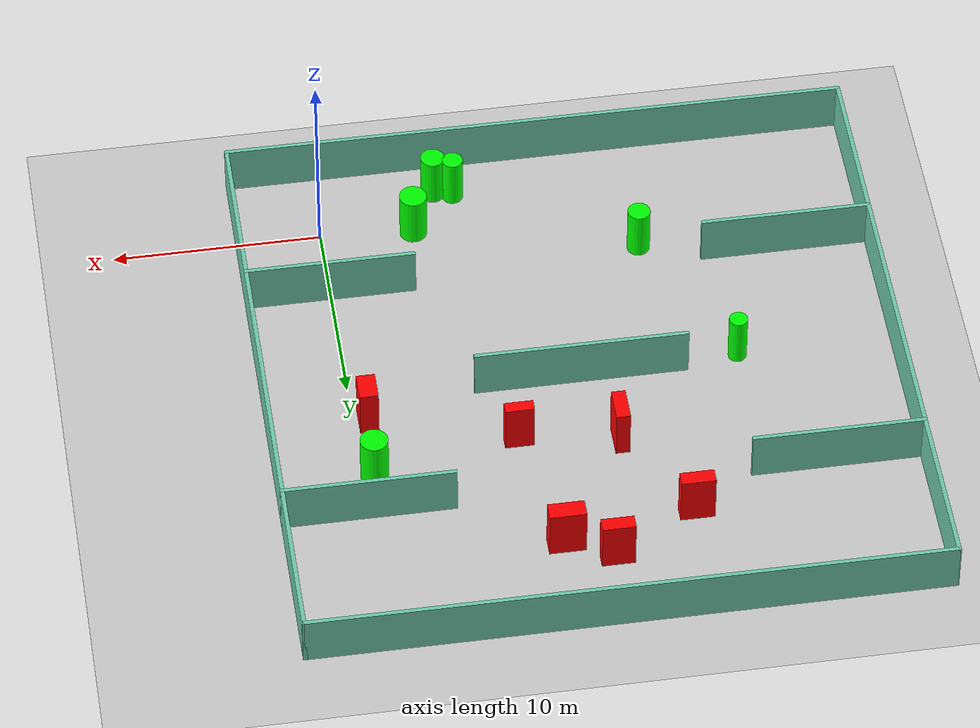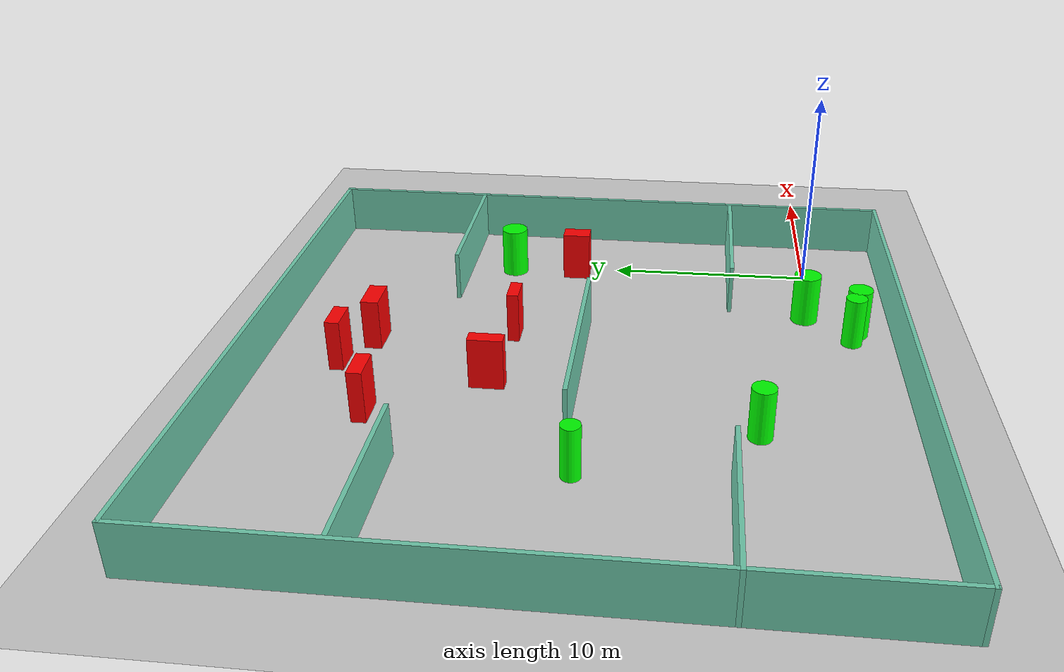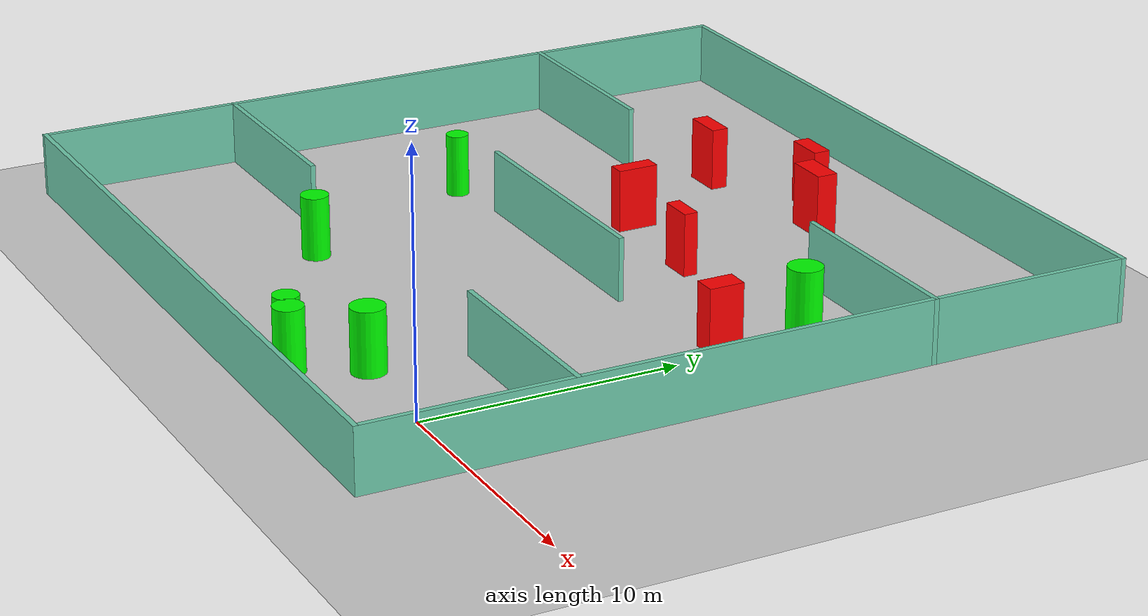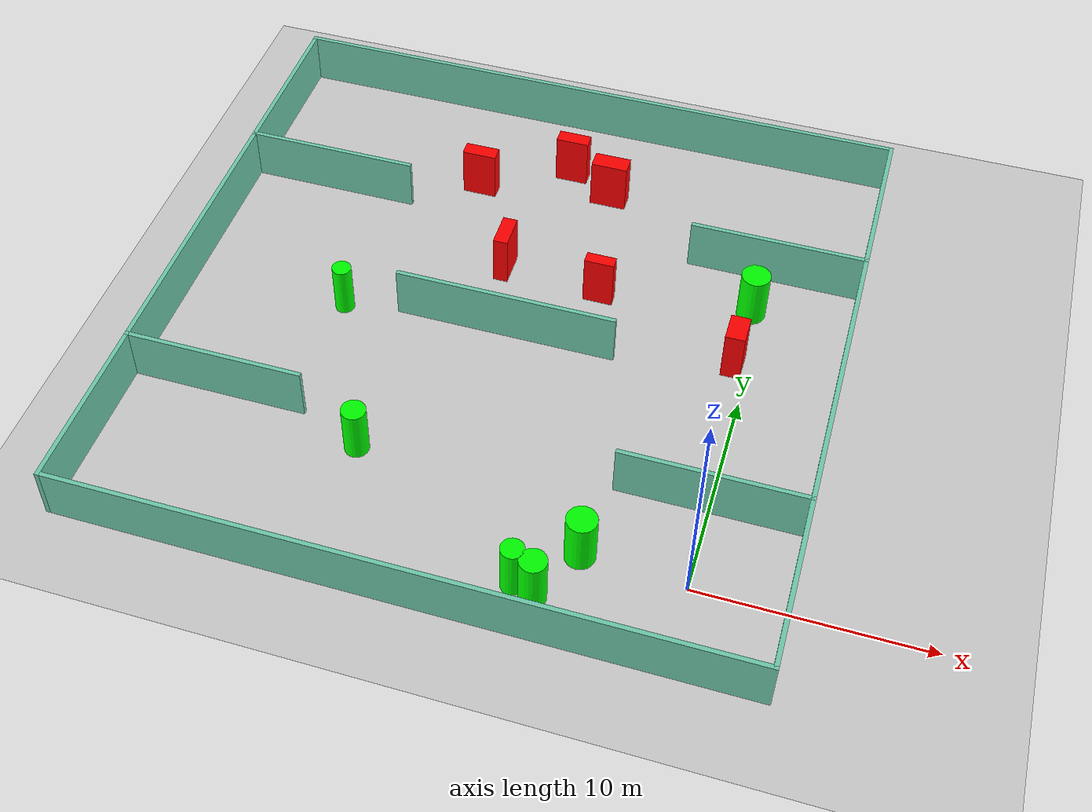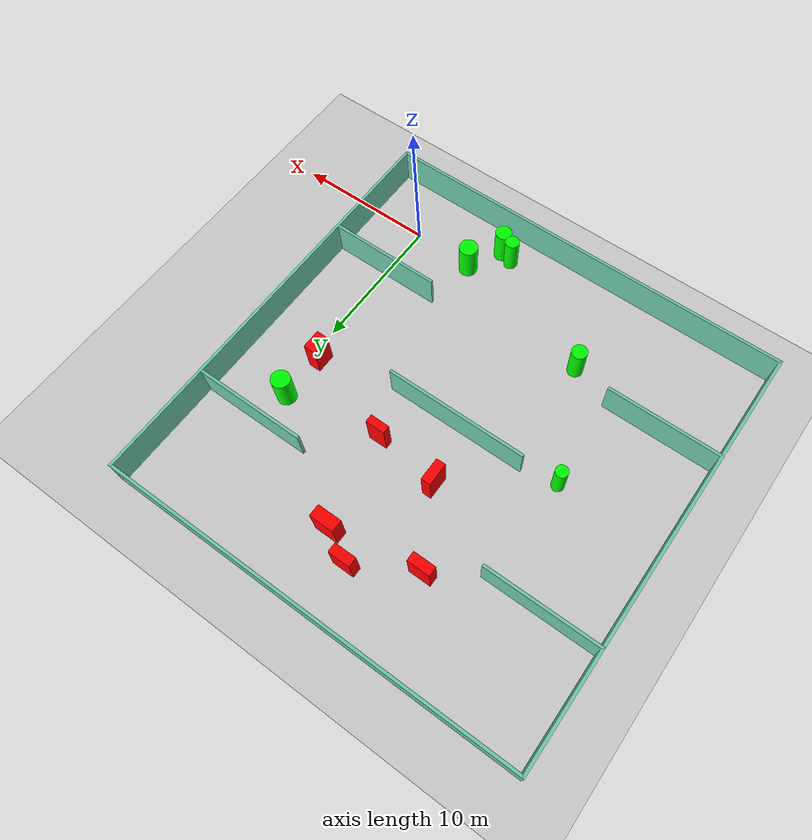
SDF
<sdf version="1.7">
 <world name="default">
  <light name="sun" type="directional">
   <pose>0 0 10 0 -0 0</pose>
   <diffuse>0.8 0.8 0.8 1</diffuse>
   <specular>0.2 0.2 0.2 1</specular>
   <attenuation>
    <range>1000</range>
    <constant>0.9</constant>
    <linear>0.01</linear>
    <quadratic>0.001</quadratic>
   </attenuation>
   <direction>-0.5 0.1 -0.9</direction>
   <spot><inner_angle>0</inner_angle><outer_angle>0</outer_angle><falloff>0</falloff></spot>
  </light>
  <model name="ground_plane">
   <static>1</static>
   <link name="link">
    <collision name="collision">
     <geometry><plane><normal>0 0 1</normal><size>100 100</size></plane></geometry>
     <surface>
      <contact><collide_bitmask>65535</collide_bitmask></contact>
      <friction><ode><mu>100</mu><mu2>50</mu2></ode></friction>
     </surface>
    </collision>
    <visual name="visual">
     <cast_shadows>0</cast_shadows>
     <geometry><plane><normal>0 0 1</normal><size>100 100</size></plane></geometry>
     <material>
      <script><uri>file://media/materials/scripts/gazebo.material</uri><name>Gazebo/Grey</name></script>
     </material>
    </visual>
   </link>
  </model>
  <gravity>0 0 -9.8</gravity>
  <magnetic_field>6e-06 2.3e-05 -4.2e-05</magnetic_field>
  <atmosphere type="adiabatic"/>
  <physics type="ode">
   <max_step_size>0.001</max_step_size>
   <real_time_factor>1</real_time_factor>
   <real_time_update_rate>1000</real_time_update_rate>
  </physics>
  <scene><ambient>0.4 0.4 0.4 1</ambient><background>0.7 0.7 0.7 1</background><shadows>1</shadows></scene>
  <spherical_coordinates>
   <surface_model>EARTH_WGS84</surface_model>
   <latitude_deg>0</latitude_deg>
   <longitude_deg>0</longitude_deg>
   <elevation>0</elevation>
   <heading_deg>0</heading_deg>
  </spherical_coordinates>
  <model name="my_base_walls">
   <link name="Wall_10">
    <collision name="Wall_10_Collision">
     <geometry><box><size>8.2 0.2 2.5</size></box></geometry>
     <pose>0 0 1.25 0 -0 0</pose>
    </collision>
    <visual name="Wall_10_Visual">
     <pose>0 0 1.25 0 -0 0</pose>
     <geometry><box><size>8.2 0.2 2.5</size></box></geometry>
     <material>
      <script><uri>file://media/materials/scripts/gazebo.material</uri><name>Gazebo/Grey</name></script>
      <ambient>0.435294 0.796078 0.67451 1</ambient>
     </material>
     <meta><layer>0</layer></meta>
    </visual>
    <pose>-11 -7 0 0 -0 0</pose>
   </link>
   <link name="Wall_12">
    <collision name="Wall_12_Collision">
     <geometry><box><size>8.2 0.2 2.5</size></box></geometry>
     <pose>0 0 1.25 0 -0 0</pose>
    </collision>
    <visual name="Wall_12_Visual">
     <pose>0 0 1.25 0 -0 0</pose>
     <geometry><box><size>8.2 0.2 2.5</size></box></geometry>
     <material>
      <script><uri>file://media/materials/scripts/gazebo.material</uri><name>Gazebo/Grey</name></script>
      <ambient>0.435294 0.796078 0.67451 1</ambient>
     </material>
     <meta><layer>0</layer></meta>
    </visual>
    <pose>-11 7 0 0 -0 0</pose>
   </link>
   <link name="Wall_14">
    <collision name="Wall_14_Collision">
     <geometry><box><size>8.2 0.2 2.5</size></box></geometry>
     <pose>0 0 1.25 0 -0 0</pose>
    </collision>
    <visual name="Wall_14_Visual">
     <pose>0 0 1.25 0 -0 0</pose>
     <geometry><box><size>8.2 0.2 2.5</size></box></geometry>
     <material>
      <script><uri>file://media/materials/scripts/gazebo.material</uri><name>Gazebo/Grey</name></script>
      <ambient>0.435294 0.796078 0.67451 1</ambient>
     </material>
     <meta><layer>0</layer></meta>
    </visual>
    <pose>11 7 0 0 -0 3.14159</pose>
   </link>
   <link name="Wall_16">
    <collision name="Wall_16_Collision">
     <geometry><box><size>10.2 0.2 2.5</size></box></geometry>
     <pose>0 0 1.25 0 -0 0</pose>
    </collision>
    <visual name="Wall_16_Visual">
     <pose>0 0 1.25 0 -0 0</pose>
     <geometry><box><size>10.2 0.2 2.5</size></box></geometry>
     <material>
      <script><uri>file://media/materials/scripts/gazebo.material</uri><name>Gazebo/Grey</name></script>
      <ambient>0.435294 0.796078 0.67451 1</ambient>
     </material>
     <meta><layer>0</layer></meta>
    </visual>
    <pose>0 0 0 0 -0 3.14159</pose>
   </link>
   <link name="Wall_2">
    <collision name="Wall_2_Collision">
     <geometry><box><size>30.2 0.2 2.5</size></box></geometry>
     <pose>0 0 1.25 0 -0 0</pose>
    </collision>
    <visual name="Wall_2_Visual">
     <pose>0 0 1.25 0 -0 0</pose>
     <geometry><box><size>30.2 0.2 2.5</size></box></geometry>
     <material>
      <script><uri>file://media/materials/scripts/gazebo.material</uri><name>Gazebo/Grey</name></script>
      <ambient>0.435294 0.796078 0.67451 1</ambient>
     </material>
     <meta><layer>0</layer></meta>
    </visual>
    <pose>0 -15 0 0 -0 3.14159</pose>
   </link>
   <link name="Wall_3">
    <collision name="Wall_3_Collision">
     <geometry><box><size>30.2 0.2 2.5</size></box></geometry>
     <pose>0 0 1.25 0 -0 0</pose>
    </collision>
    <visual name="Wall_3_Visual">
     <pose>0 0 1.25 0 -0 0</pose>
     <geometry><box><size>30.2 0.2 2.5</size></box></geometry>
     <material>
      <script><uri>file://media/materials/scripts/gazebo.material</uri><name>Gazebo/Grey</name></script>
      <ambient>0.435294 0.796078 0.67451 1</ambient>
     </material>
     <meta><layer>0</layer></meta>
    </visual>
    <pose>-15 0 0 0 -0 1.5708</pose>
   </link>
   <link name="Wall_4">
    <collision name="Wall_4_Collision">
     <geometry><box><size>30.2 0.2 2.5</size></box></geometry>
     <pose>0 0 1.25 0 -0 0</pose>
    </collision>
    <visual name="Wall_4_Visual">
     <pose>0 0 1.25 0 -0 0</pose>
     <geometry><box><size>30.2 0.2 2.5</size></box></geometry>
     <material>
      <script><uri>file://media/materials/scripts/gazebo.material</uri><name>Gazebo/Grey</name></script>
      <ambient>0.435294 0.796078 0.67451 1</ambient>
     </material>
     <meta><layer>0</layer></meta>
    </visual>
    <pose>0 15 0 0 -0 0</pose>
   </link>
   <link name="Wall_6">
    <collision name="Wall_6_Collision">
     <geometry><box><size>30.2 0.2 2.5</size></box></geometry>
     <pose>0 0 1.25 0 -0 0</pose>
    </collision>
    <visual name="Wall_6_Visual">
     <pose>0 0 1.25 0 -0 0</pose>
     <geometry><box><size>30.2 0.2 2.5</size></box></geometry>
     <material>
      <script><uri>file://media/materials/scripts/gazebo.material</uri><name>Gazebo/Grey</name></script>
      <ambient>0.435294 0.796078 0.67451 1</ambient>
     </material>
     <meta><layer>0</layer></meta>
    </visual>
    <pose>15 0 0 0 -0 1.5708</pose>
   </link>
   <link name="Wall_8">
    <collision name="Wall_8_Collision">
     <geometry><box><size>8.2 0.2 2.5</size></box></geometry>
     <pose>0 0 1.25 0 -0 0</pose>
    </collision>
    <visual name="Wall_8_Visual">
     <pose>0 0 1.25 0 -0 0</pose>
     <geometry><box><size>8.2 0.2 2.5</size></box></geometry>
     <material>
      <script><uri>file://media/materials/scripts/gazebo.material</uri><name>Gazebo/Grey</name></script>
      <ambient>0.435294 0.796078 0.67451 1</ambient>
     </material>
     <meta><layer>0</layer></meta>
    </visual>
    <pose>11 -7 0 0 -0 3.14159</pose>
   </link>
   <static>1</static>
   <pose>-11 11 0 0 -0 0</pose>
  </model>
  <model name="cylinder1">
   <static>1</static>
   <link name="link">
    <inertial>
     <mass>1</mass>
     <inertia><ixx>0.5</ixx><ixy>0</ixy><ixz>0</ixz><iyy>0.5</iyy><iyz>0</iyz><izz>1</izz></inertia>
    </inertial>
    <collision name="collision">
     <geometry><cylinder><radius>0.4410696027921064</radius><length>2.5</length></cylinder></geometry>
    </collision>
    <visual name="visual">
     <geometry><cylinder><radius>0.4410696027921064</radius><length>2.5</length></cylinder></geometry>
     <material>
      <ambient>0 1 0 1</ambient>
      <diffuse>0 1 0 1</diffuse>
      <specular>0.1 0.1 0.1 1</specular>
      <emissive>0 0 0 0</emissive>
     </material>
    </visual>
   </link>
   <pose>-18.552108939833495 10.490298329862966 1.25 0 0 0</pose>
  </model>
  <model name="cylinder2">
   <static>1</static>
   <link name="link">
    <inertial>
     <mass>1</mass>
     <inertia><ixx>0.5</ixx><ixy>0</ixy><ixz>0</ixz><iyy>0.5</iyy><iyz>0</iyz><izz>1</izz></inertia>
    </inertial>
    <collision name="collision">
     <geometry><cylinder><radius>0.6589148411256349</radius><length>2.5</length></cylinder></geometry>
    </collision>
    <visual name="visual">
     <geometry><cylinder><radius>0.6589148411256349</radius><length>2.5</length></cylinder></geometry>
     <material>
      <ambient>0 1 0 1</ambient>
      <diffuse>0 1 0 1</diffuse>
      <specular>0.1 0.1 0.1 1</specular>
      <emissive>0 0 0 0</emissive>
     </material>
    </visual>
   </link>
   <pose>-4.499647504848701 0.2715704994810748 1.25 0 0 0</pose>
  </model>
  <model name="cylinder3">
   <static>1</static>
   <link name="link">
    <inertial>
     <mass>1</mass>
     <inertia><ixx>0.5</ixx><ixy>0</ixy><ixz>0</ixz><iyy>0.5</iyy><iyz>0</iyz><izz>1</izz></inertia>
    </inertial>
    <collision name="collision">
     <geometry><cylinder><radius>0.5820710684598611</radius><length>2.5</length></cylinder></geometry>
    </collision>
    <visual name="visual">
     <geometry><cylinder><radius>0.5820710684598611</radius><length>2.5</length></cylinder></geometry>
     <material>
      <ambient>0 1 0 1</ambient>
      <diffuse>0 1 0 1</diffuse>
      <specular>0.1 0.1 0.1 1</specular>
      <emissive>0 0 0 0</emissive>
     </material>
    </visual>
   </link>
   <pose>-5.785226226907245 -2.1512382095438807 1.25 0 0 0</pose>
  </model>
  <model name="cylinder4">
   <static>1</static>
   <link name="link">
    <inertial>
     <mass>1</mass>
     <inertia><ixx>0.5</ixx><ixy>0</ixy><ixz>0</ixz><iyy>0.5</iyy><iyz>0</iyz><izz>1</izz></inertia>
    </inertial>
    <collision name="collision">
     <geometry><cylinder><radius>0.6640778626682353</radius><length>2.5</length></cylinder></geometry>
    </collision>
    <visual name="visual">
     <geometry><cylinder><radius>0.6640778626682353</radius><length>2.5</length></cylinder></geometry>
     <material>
      <ambient>0 1 0 1</ambient>
      <diffuse>0 1 0 1</diffuse>
      <specular>0.1 0.1 0.1 1</specular>
      <emissive>0 0 0 0</emissive>
     </material>
    </visual>
   </link>
   <pose>-0.576565597713742 15.549533078117651 1.25 0 0 0</pose>
  </model>
  <model name="cylinder5">
   <static>1</static>
   <link name="link">
    <inertial>
     <mass>1</mass>
     <inertia><ixx>0.5</ixx><ixy>0</ixy><ixz>0</ixz><iyy>0.5</iyy><iyz>0</iyz><izz>1</izz></inertia>
    </inertial>
    <collision name="collision">
     <geometry><cylinder><radius>0.5461027438805615</radius><length>2.5</length></cylinder></geometry>
    </collision>
    <visual name="visual">
     <geometry><cylinder><radius>0.5461027438805615</radius><length>2.5</length></cylinder></geometry>
     <material>
      <ambient>0 1 0 1</ambient>
      <diffuse>0 1 0 1</diffuse>
      <specular>0.1 0.1 0.1 1</specular>
      <emissive>0 0 0 0</emissive>
     </material>
    </visual>
   </link>
   <pose>-15.064670093832792 2.845359609723973 1.25 0 0 0</pose>
  </model>
  <model name="cylinder6">
   <static>1</static>
   <link name="link">
    <inertial>
     <mass>1</mass>
     <inertia><ixx>0.5</ixx><ixy>0</ixy><ixz>0</ixz><iyy>0.5</iyy><iyz>0</iyz><izz>1</izz></inertia>
    </inertial>
    <collision name="collision">
     <geometry><cylinder><radius>0.5005626910382536</radius><length>2.5</length></cylinder></geometry>
    </collision>
    <visual name="visual">
     <geometry><cylinder><radius>0.5005626910382536</radius><length>2.5</length></cylinder></geometry>
     <material>
      <ambient>0 1 0 1</ambient>
      <diffuse>0 1 0 1</diffuse>
      <specular>0.1 0.1 0.1 1</specular>
      <emissive>0 0 0 0</emissive>
     </material>
    </visual>
   </link>
   <pose>-6.707410213829984 -1.8514437591268926 1.25 0 0 0</pose>
  </model>
  <model name="box1">
   <static>1</static>
   <link name="link">
    <inertial>
     <mass>1</mass>
     <inertia><ixx>0.083</ixx><ixy>0</ixy><ixz>0</ixz><iyy>0.083</iyy><iyz>0</iyz><izz>0.083</izz></inertia>
    </inertial>
    <collision name="collision">
     <geometry><box><size>0.8873871416340098 1.3706017587407282 2.5</size></box></geometry>
    </collision>
    <visual name="visual">
     <geometry><box><size>0.8873871416340098 1.3706017587407282 2.5</size></box></geometry>
     <material>
      <ambient>1 0 0 1</ambient>
      <diffuse>1 0 0 1</diffuse>
      <specular>0.1 0.1 0.1 1</specular>
      <emissive>0 0 0 0</emissive>
     </material>
    </visual>
    <sensor name="my_contact" type="contact">
     <contact><collision>box_collision</collision><topic>__default_topic__</topic></contact>
    </sensor>
   </link>
   <pose>-0.709284393212652 12.152084409525724 1.25 0 0 0</pose>
  </model>
  <model name="box2">
   <static>1</static>
   <link name="link">
    <inertial>
     <mass>1</mass>
     <inertia><ixx>0.083</ixx><ixy>0</ixy><ixz>0</ixz><iyy>0.083</iyy><iyz>0</iyz><izz>0.083</izz></inertia>
    </inertial>
    <collision name="collision">
     <geometry><box><size>1.619064806626702 0.6834616175829032 2.5</size></box></geometry>
    </collision>
    <visual name="visual">
     <geometry><box><size>1.619064806626702 0.6834616175829032 2.5</size></box></geometry>
     <material>
      <ambient>1 0 0 1</ambient>
      <diffuse>1 0 0 1</diffuse>
      <specular>0.1 0.1 0.1 1</specular>
      <emissive>0 0 0 0</emissive>
     </material>
    </visual>
    <sensor name="my_contact" type="contact">
     <contact><collision>box_collision</collision><topic>__default_topic__</topic></contact>
    </sensor>
   </link>
   <pose>-14.98948922675482 19.99508212677524 1.25 0 0 0</pose>
  </model>
  <model name="box3">
   <static>1</static>
   <link name="link">
    <inertial>
     <mass>1</mass>
     <inertia><ixx>0.083</ixx><ixy>0</ixy><ixz>0</ixz><iyy>0.083</iyy><iyz>0</iyz><izz>0.083</izz></inertia>
    </inertial>
    <collision name="collision">
     <geometry><box><size>1.3802856332558018 0.5583125338843267 2.5</size></box></geometry>
    </collision>
    <visual name="visual">
     <geometry><box><size>1.3802856332558018 0.5583125338843267 2.5</size></box></geometry>
     <material>
      <ambient>1 0 0 1</ambient>
      <diffuse>1 0 0 1</diffuse>
      <specular>0.1 0.1 0.1 1</specular>
      <emissive>0 0 0 0</emissive>
     </material>
    </visual>
    <sensor name="my_contact" type="contact">
     <contact><collision>box_collision</collision><topic>__default_topic__</topic></contact>
    </sensor>
   </link>
   <pose>-7.523474703236641 14.46000869949183 1.25 0 0 0</pose>
  </model>
  <model name="box4">
   <static>1</static>
   <link name="link">
    <inertial>
     <mass>1</mass>
     <inertia><ixx>0.083</ixx><ixy>0</ixy><ixz>0</ixz><iyy>0.083</iyy><iyz>0</iyz><izz>0.083</izz></inertia>
    </inertial>
    <collision name="collision">
     <geometry><box><size>1.7290107776794699 0.844990079256039 2.5</size></box></geometry>
    </collision>
    <visual name="visual">
     <geometry><box><size>1.7290107776794699 0.844990079256039 2.5</size></box></geometry>
     <material>
      <ambient>1 0 0 1</ambient>
      <diffuse>1 0 0 1</diffuse>
      <specular>0.1 0.1 0.1 1</specular>
      <emissive>0 0 0 0</emissive>
     </material>
    </visual>
    <sensor name="my_contact" type="contact">
     <contact><collision>box_collision</collision><topic>__default_topic__</topic></contact>
    </sensor>
   </link>
   <pose>-8.741378216157026 21.06496743190696 1.25 0 0 0</pose>
  </model>
  <model name="box5">
   <static>1</static>
   <link name="link">
    <inertial>
     <mass>1</mass>
     <inertia><ixx>0.083</ixx><ixy>0</ixy><ixz>0</ixz><iyy>0.083</iyy><iyz>0</iyz><izz>0.083</izz></inertia>
    </inertial>
    <collision name="collision">
     <geometry><box><size>1.5609567670110829 0.676354073399564 2.5</size></box></geometry>
    </collision>
    <visual name="visual">
     <geometry><box><size>1.5609567670110829 0.676354073399564 2.5</size></box></geometry>
     <material>
      <ambient>1 0 0 1</ambient>
      <diffuse>1 0 0 1</diffuse>
      <specular>0.1 0.1 0.1 1</specular>
      <emissive>0 0 0 0</emissive>
     </material>
    </visual>
    <sensor name="my_contact" type="contact">
     <contact><collision>box_collision</collision><topic>__default_topic__</topic></contact>
    </sensor>
   </link>
   <pose>-10.929082015784267 22.231500727581736 1.25 0 0 0</pose>
  </model>
  <model name="box6">
   <static>1</static>
   <link name="link">
    <inertial>
     <mass>1</mass>
     <inertia><ixx>0.083</ixx><ixy>0</ixy><ixz>0</ixz><iyy>0.083</iyy><iyz>0</iyz><izz>0.083</izz></inertia>
    </inertial>
    <collision name="collision">
     <geometry><box><size>0.6716720074678937 1.6241537295767505 2.5</size></box></geometry>
    </collision>
    <visual name="visual">
     <geometry><box><size>0.6716720074678937 1.6241537295767505 2.5</size></box></geometry>
     <material>
      <ambient>1 0 0 1</ambient>
      <diffuse>1 0 0 1</diffuse>
      <specular>0.1 0.1 0.1 1</specular>
      <emissive>0 0 0 0</emissive>
     </material>
    </visual>
    <sensor name="my_contact" type="contact">
     <contact><collision>box_collision</collision><topic>__default_topic__</topic></contact>
    </sensor>
   </link>
   <pose>-12.213627846892209 15.011232934629298 1.25 0 0 0</pose>
  </model>
 </world>
</sdf>
